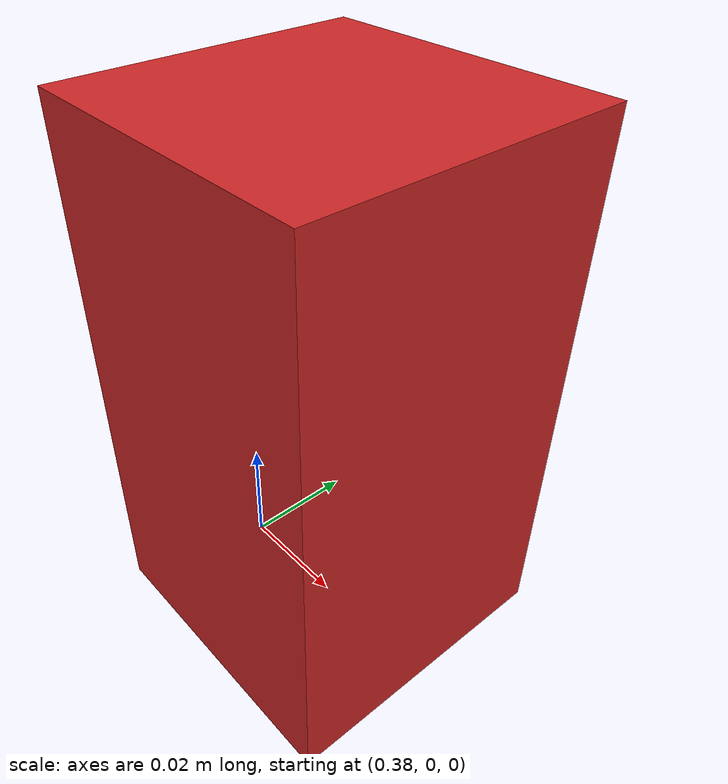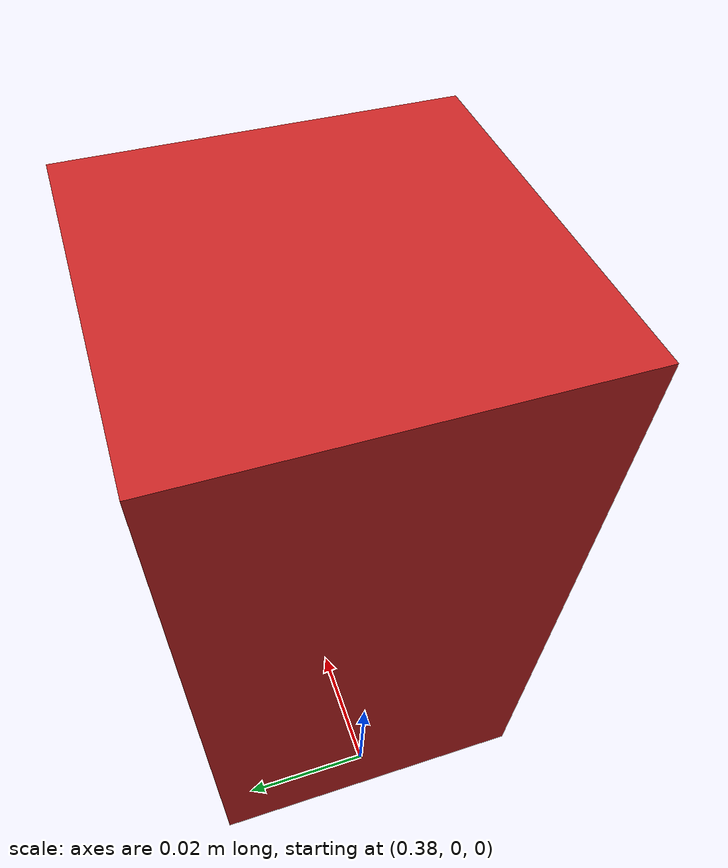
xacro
<?xml version="1.0"?>
<robot name="box">

<link name="base_link">
  <collision>
    <origin xyz="0.4 0 0.047" rpy="0 0 0"/>
    <geometry>
      <box size="0.05 0.05 0.09" />
    </geometry>
  </collision>

  <visual>
    <origin xyz="0.4 0 0.047" rpy="0 0 0"/>
    <geometry>
      <box size="0.05 0.05 0.09" />
    </geometry>
  </visual>

  <inertial>
    <origin xyz="0.4 0 0.047" rpy="0 0 0" />
    <mass value="0.05" />
    <inertia
      ixx="4.4167e-5" ixy="0.0" ixz="0.0"
      iyy="4.4167e-5" iyz="0.0"
      izz="2.0833e-5" />
  </inertial>
  </link>

<gazebo reference="base_link">
  <material>Gazebo/Red</material>
    <mu1>8.0</mu1>
    <mu2>8.0</mu2>
</gazebo>

</robot>
